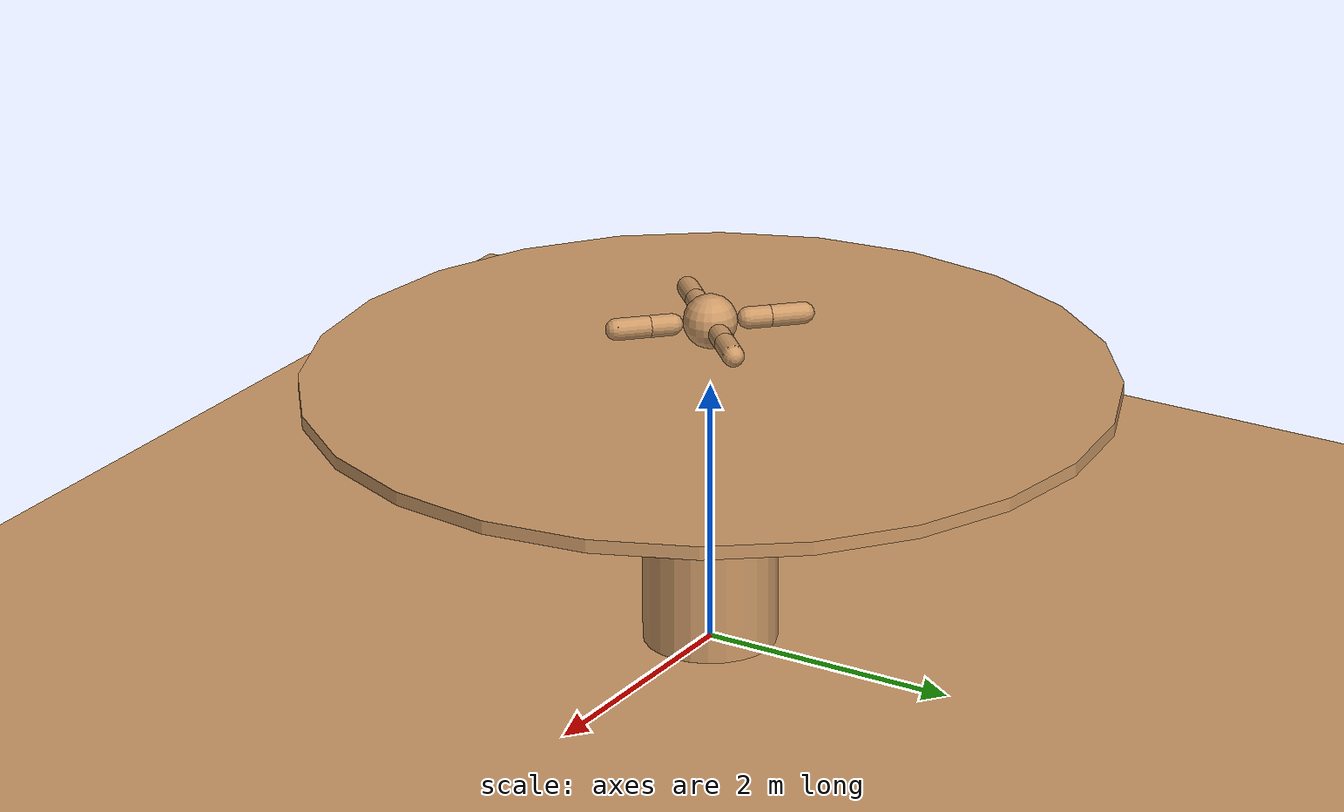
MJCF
<mujoco model="circular_ring_platform">
  <compiler angle="degree" coordinate="local" inertiafromgeom="true" autolimits="true" />
  <option integrator="RK4" timestep="0.001" gravity="0 0 -9.81" />

  <visual>
    <headlight diffuse="0.6 0.6 0.6" ambient="0.3 0.3 0.3" specular="0 0 0" />
    <rgba haze="0.15 0.25 0.35 1" />
    <global azimuth="120" elevation="-20" />
  </visual>

  <statistic center="0 0 0.3" extent="1.2" />

  <asset>
    <texture name="sky" type="skybox" builtin="gradient" rgb1="0.3 0.5 0.7" rgb2="0 0 0" width="512" height="3072" />
    <texture name="groundplane" type="2d" builtin="checker" mark="edge" rgb1="0.2 0.3 0.4" rgb2="0.1 0.2 0.3" markrgb="0.8 0.8 0.8" width="300" height="300" />
    <material name="groundplane" texture="groundplane" texuniform="true" texrepeat="5 5" reflectance="0.2" />
    <material name="platform_mat" rgba="0.3 0.6 0.2 1" reflectance="0.2" shininess="8" />
    <material name="hole_mat" rgba="0 0 0 0" />
  </asset>

  <worldbody>
    <light pos="0 0 3" dir="0 0 -1" directional="false" />

    <geom name="floor" type="plane" size="0 0 0.05" material="groundplane" friction="150 150 150" />

    <geom name="outer_ring" type="cylinder" pos="0 0 2.0" size="3.0 0.05" material="platform_mat" condim="4" />

    <geom name="inner_hole" type="cylinder" pos="0 0 1.0" size="0.5 1.0" material="hole_mat" contype="0" conaffinity="0" group="1" />
  </worldbody>
<include file="AntRobot.xml" /></mujoco>

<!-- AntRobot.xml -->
<mujoco>
    <default>
        <joint armature="1" damping="1" limited="true"/>
        <geom condim="3" conaffinity="0" density="5.0" friction="1 0.5 0.5" margin="0.01" rgba="0.8 0.6 0.4 1"/>
    </default>
    <worldbody>
    <body name="Base" pos="0.0 0.0 2.5">
        <inertial pos="0 0 0" mass="300.0" diaginertia="1 1 1"/>
        <joint type="free" armature="0" damping="0" limited="false" margin="0.01" pos="0 0 0"/>
        <geom name="geom_0.0" type="sphere" rgba="0.8 0.6 0.4 1" size="0.2"/>
        <geom type="box" size="0.1 0.1 0.05" pos="0 0 -0.2" rgba="0 0 0 0" density="200"/>
        <camera name="track" mode="trackcom" pos="0 -3 0.3" xyaxes="1 0 0 0 0 1"/>

        <!-- Limb 0 (45°) -->
        <body name="rod_0.1" pos="0.2581 0.2581 0.0">
            <geom name="geom_0.1" type="capsule" fromto="-0.0581 -0.0581 0 0.0581 0.0581 0" size="0.08" density="5.0"/>
            <site name="site_0.1" pos="0 0 0" quat="0.9238795 0.0 0.0 0.3826834"/>
            <joint name="joint_Base=rod_0.1" type="hinge" pos="-0.0581 -0.0581 0" axis="0 0 1" range="-30 30"/>
            <body name="p0" pos="-0.0581 -0.0581 0">
                <site name="p0"/>
            </body>
            <body name="rod_1.2" pos="0.1461 0.1461 0">
                <geom name="geom_1.2" type="capsule" fromto="-0.088 -0.088 0 0.088 0.088 0" size="0.08" density="5.0"/>
                <inertial pos="0 0 0" mass="20.0" diaginertia="0.1 0.1 0.1"/>
                <site name="site_1.2" pos="0 0 0" quat="0.9238795 0.0 0.0 0.3826834"/>
                <joint name="joint_rod_0.1=rod_1.2" type="hinge" pos="-0.088 -0.088 0" axis="-1 1 0" range="30 70"/>
                <body name="p1" pos="-0.088 -0.088 0">
                    <site name="p1"/>
                </body>
            </body>
        </body>

        <!-- Limb 1 (135°) -->
        <body name="rod_3.4" pos="-0.2581 0.2581 0.0">
            <geom name="geom_3.4" type="capsule" fromto="0.0581 -0.0581 0 -0.0581 0.0581 0" size="0.08" density="5.0"/>
            <site name="site_3.4" pos="0 0 0" quat="0.3826834 0.0 -0.0 0.9238795"/>
            <joint name="joint_Base=rod_3.4" type="hinge" pos="0.0581 -0.0581 0" axis="0 0 1" range="-30 30"/>
            <body name="p3" pos="0.0581 -0.0581 0">
                <site name="p3"/>
            </body>
            <body name="rod_4.5" pos="-0.1461 0.1461 0">
                <geom name="geom_4.5" type="capsule" fromto="0.088 -0.088 0 -0.088 0.088 0" size="0.08" density="5.0"/>
                <inertial pos="0 0 0" mass="20.0" diaginertia="0.1 0.1 0.1"/>
                <site name="site_4.5" pos="0 0 0" quat="0.3826834 0.0 -0.0 0.9238795"/>
                <joint name="joint_rod_3.4=rod_4.5" type="hinge" pos="0.088 -0.088 0" axis="1 1 0" range="-70 -30"/>
                <body name="p4" pos="0.088 -0.088 0">
                    <site name="p4"/>
                </body>
            </body>
        </body>

        <!-- Limb 2 (225°) -->
        <body name="rod_6.7" pos="-0.2581 -0.2581 0.0">
            <geom name="geom_6.7" type="capsule" fromto="0.0581 0.0581 0 -0.0581 -0.0581 0" size="0.08" density="5.0"/>
            <site name="site_6.7" pos="0 0 0" quat="0.3826834 0.0 -0.0 -0.9238795"/>
            <joint name="joint_Base=rod_6.7" type="hinge" pos="0.0581 0.0581 0" axis="0 0 1" range="-30 30"/>
            <body name="p6" pos="0.0581 0.0581 0">
                <site name="p6"/>
            </body>
            <body name="rod_7.8" pos="-0.1461 -0.1461 0">
                <geom name="geom_7.8" type="capsule" fromto="0.088 0.088 0 -0.088 -0.088 0" size="0.08" density="5.0"/>
                <inertial pos="0 0 0" mass="20.0" diaginertia="0.1 0.1 0.1"/>
                <site name="site_7.8" pos="0 0 0" quat="0.3826834 0.0 -0.0 -0.9238795"/>
                <joint name="joint_rod_6.7=rod_7.8" type="hinge" pos="0.088 0.088 0" axis="-1 1 0" range="-70 -30"/>
                <body name="p7" pos="0.088 0.088 0">
                    <site name="p7"/>
                </body>
            </body>
        </body>

        <!-- Limb 3 (315°) -->
        <body name="rod_9.10" pos="0.2581 -0.2581 0.0">
            <geom name="geom_9.10" type="capsule" fromto="-0.0581 0.0581 0 0.0581 -0.0581 0" size="0.08" density="5.0"/>
            <site name="site_9.10" pos="0 0 0" quat="0.9238795 0.0 0.0 -0.3826834"/>
            <joint name="joint_Base=rod_9.10" type="hinge" pos="-0.0581 0.0581 0" axis="0 0 1" range="-30 30"/>
            <body name="p9" pos="-0.0581 0.0581 0">
                <site name="p9"/>
            </body>
            <body name="rod_10.11" pos="0.1461 -0.1461 0">
                <geom name="geom_10.11" type="capsule" fromto="-0.088 0.088 0 0.088 -0.088 0" size="0.08" density="5.0"/>
                <inertial pos="0 0 0" mass="20.0" diaginertia="0.1 0.1 0.1"/>
                <site name="site_10.11" pos="0 0 0" quat="0.9238795 0.0 0.0 -0.3826834"/>
                <joint name="joint_rod_9.10=rod_10.11" type="hinge" pos="-0.088 0.088 0" axis="1 1 0" range="30 70"/>
                <body name="p10" pos="-0.088 0.088 0">
                    <site name="p10"/>
                </body>
            </body>
        </body>

    </body>
    </worldbody>

    <actuator>
        <motor gear="700" ctrlrange="-0.05 0.05" ctrllimited="true" joint="joint_Base=rod_0.1"/>
        <motor gear="700" ctrlrange="-0.05 0.05" ctrllimited="true" joint="joint_rod_0.1=rod_1.2"/>
        <motor gear="700" ctrlrange="-0.05 0.05" ctrllimited="true" joint="joint_Base=rod_3.4"/>
        <motor gear="700" ctrlrange="-0.05 0.05" ctrllimited="true" joint="joint_rod_3.4=rod_4.5"/>
        <motor gear="700" ctrlrange="-0.05 0.05" ctrllimited="true" joint="joint_Base=rod_6.7"/>
        <motor gear="700" ctrlrange="-0.05 0.05" ctrllimited="true" joint="joint_rod_6.7=rod_7.8"/>
        <motor gear="700" ctrlrange="-0.05 0.05" ctrllimited="true" joint="joint_Base=rod_9.10"/>
        <motor gear="700" ctrlrange="-0.05 0.05" ctrllimited="true" joint="joint_rod_9.10=rod_10.11"/>
    </actuator>

    <sensor>
        <accelerometer site="site_0.1"/>
        <gyro site="site_0.1"/>
        <magnetometer site="site_0.1"/>
        <accelerometer site="site_1.2"/>
        <gyro site="site_1.2"/>
        <magnetometer site="site_1.2"/>
        <accelerometer site="site_3.4"/>
        <gyro site="site_3.4"/>
        <magnetometer site="site_3.4"/>
        <accelerometer site="site_4.5"/>
        <gyro site="site_4.5"/>
        <magnetometer site="site_4.5"/>
        <accelerometer site="site_6.7"/>
        <gyro site="site_6.7"/>
        <magnetometer site="site_6.7"/>
        <accelerometer site="site_7.8"/>
        <gyro site="site_7.8"/>
        <magnetometer site="site_7.8"/>
        <accelerometer site="site_9.10"/>
        <gyro site="site_9.10"/>
        <magnetometer site="site_9.10"/>
        <accelerometer site="site_10.11"/>
        <gyro site="site_10.11"/>
        <magnetometer site="site_10.11"/>
    </sensor>

    <contact>
        <pair geom1="geom_0.0" geom2="floor"/>
        <pair geom1="geom_0.1" geom2="floor"/>
        <pair geom1="geom_1.2" geom2="floor"/>
        <pair geom1="geom_3.4" geom2="floor"/>
        <pair geom1="geom_4.5" geom2="floor"/>
        <pair geom1="geom_6.7" geom2="floor"/>
        <pair geom1="geom_7.8" geom2="floor"/>
        <pair geom1="geom_9.10" geom2="floor"/>
        <pair geom1="geom_10.11" geom2="floor"/>
    </contact>
    <contact>
        <pair geom1="geom_0.0" geom2="outer_ring"/>
        <pair geom1="geom_0.1" geom2="outer_ring"/>
        <pair geom1="geom_1.2" geom2="outer_ring"/>
        <pair geom1="geom_3.4" geom2="outer_ring"/>
        <pair geom1="geom_4.5" geom2="outer_ring"/>
        <pair geom1="geom_6.7" geom2="outer_ring"/>
        <pair geom1="geom_7.8" geom2="outer_ring"/>
        <pair geom1="geom_9.10" geom2="outer_ring"/>
        <pair geom1="geom_10.11" geom2="outer_ring"/>
    </contact>
</mujoco>
